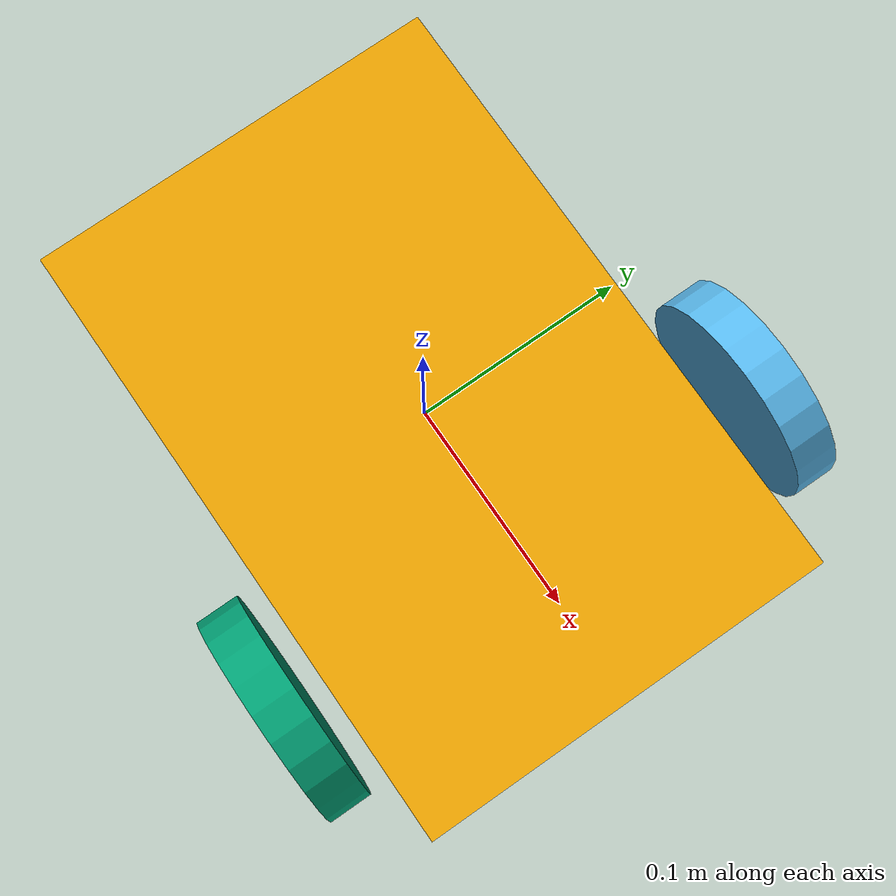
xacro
<?xml version='1.0'?>
<robot name="robot" xmlns:xacro="http://www.ros.org/wiki/xacro">

    <xacro:include filename="$(find gazebo_test_inertial)/urdf/params.xacro" />
    <xacro:include filename="$(find gazebo_test_inertial)/urdf/wheel.xacro" />
    <xacro:include filename="$(find gazebo_test_inertial)/urdf/diffdrive.gazebo" />

        <!-- Base link -->
    <link name="base_link">
        <visual>
            <origin xyz="0 0 0" rpy="0 0 0" />
            <geometry>
                <box size="${base_x} ${base_y} ${base_z}"/>
            </geometry>
        </visual>
        <collision>
            <origin xyz="0 0 0" rpy="0 0 0" />
            <geometry>
                <box size="${base_x} ${base_y} ${base_z}"/>
            </geometry>
        </collision>
        <inertial>
            <origin xyz="0 0 0" rpy="0 0 ${base_z / 2}" />
            <mass value="${base_mass}" />
            <inertia ixx="${base_Ixx}" ixy="0" ixz="0"
                iyy="${base_Iyy}" iyz="0" izz="${base_Izz}" />
        </inertial>
    </link>

    <!-- Left drive wheel -->
    <xacro:wheel name="lwheel" joint_xyz="${wheel_xoffset} ${wheel_separation / 2} 0" />
    <!-- Right drive wheel -->
    <xacro:wheel name="rwheel" joint_xyz="${wheel_xoffset} ${-wheel_separation / 2} 0" />

</robot>

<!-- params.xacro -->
<robot xmlns:xacro="http://www.ros.org/wiki/xacro">

    <!-- Robot parameters -->
    <xacro:property name="rho" value="0.5" />
    <xacro:property name="wheel_diameter" value="0.100" />
    <xacro:property name="wheel_xoffset" value="0.070" />
    <xacro:property name="wheel_separation" value="0.240" />

    <xacro:property name="base_x" value="0.300" />
    <xacro:property name="base_y" value="0.200" />
    <xacro:property name="base_z" value="0.020" />
    <xacro:property name="base_vol" value="${base_x * base_y * base_z}" />
    <xacro:property name="base_mass" value="${1000.0 * base_vol * rho}" />
    <xacro:property name="base_Ixx" value="${(1/12) * base_mass * (base_y**2 + base_z**2)}" />
    <xacro:property name="base_Iyy" value="${(1/12) * base_mass * (base_x**2 + base_z**2)}" />
    <xacro:property name="base_Izz" value="${(1/12) * base_mass * (base_x**2 + base_y**2)}" />

    <xacro:property name="wheel_h" value="0.020" />
    <xacro:property name="wheel_r" value="${wheel_diameter / 2}" />
    <xacro:property name="wheel_vol" value="${pi * wheel_r**2 * wheel_h}" />
    <xacro:property name="wheel_mass" value="${1000.0 * wheel_vol * rho}" />
    <xacro:property name="wheel_Ixx" value="${(1/12) * wheel_mass * wheel_h**2}" />
    <xacro:property name="wheel_Izz" value="${(1/2) * wheel_mass * wheel_r**2}" />

</robot>

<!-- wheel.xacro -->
<robot xmlns:xacro="http://www.ros.org/wiki/xacro">

    <xacro:include filename="$(find gazebo_test_inertial)/urdf/params.xacro" />

    <!-- Macro for robot wheel -->
    <xacro:macro name="wheel" params="name joint_xyz">
        <link name="${name}_link">
            <visual>
                <origin xyz="0 0 0" rpy="${pi / 2} 0 0" />
                <geometry>
                    <cylinder length="${wheel_h}" radius="${wheel_r}" />
                </geometry>
            </visual>
            <collision>
                <origin xyz="0 0 0" rpy="${pi / 2} 0 0" />
                <geometry>
                    <cylinder length="${wheel_h}" radius="${wheel_r}" />
                </geometry>
            </collision>
            <inertial>
                <origin xyz="0 0 0" rpy="${pi / 2} 0 0" />
                <mass value="${wheel_mass}" />
                <inertia ixx="${wheel_Ixx}" ixy="0" ixz="0"
                    iyy="${wheel_Ixx}" iyz="0" izz="${wheel_Izz}" />
            </inertial>
        </link>
        <joint name="${name}_joint" type="continuous">
            <origin xyz="${joint_xyz}" rpy="0 0 0" />
            <parent link="base_link" />
            <child link="${name}_link" />
            <axis xyz="0 1 0" />
        </joint>
    </xacro:macro>

</robot>
